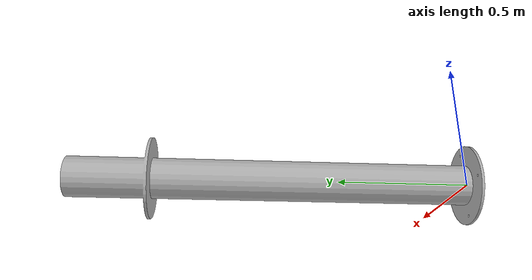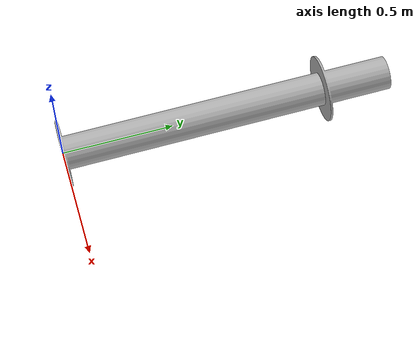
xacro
<?xml version="1.0" ?>
<robot name="Pole" xmlns:xacro="http://www.ros.org/wiki/xacro">

<xacro:include filename="$(find Pole_description)/urdf/materials.xacro" />
<xacro:include filename="$(find Pole_description)/urdf/Pole.trans" />
<xacro:include filename="$(find Pole_description)/urdf/Pole.gazebo" />
<link name="base_link">
  <inertial>
    <origin xyz="-8.521453182833983e-16 0.7075689881734561 -3.652051364071707e-16" rpy="0 0 0"/>
    <mass value="37.534806547294835"/>
    <inertia ixx="9.123243" iyy="0.263749" izz="9.123243" ixy="-0.0" iyz="-0.0" ixz="-0.0"/>
  </inertial>
  <visual>
    <origin xyz="0 0 0" rpy="0 0 0"/>
    <geometry>
      <mesh filename="package://Pole_description/meshes/base_link.stl" scale="0.001 0.001 0.001"/>
    </geometry>
    <material name="silver"/>
  </visual>
  <collision>
    <origin xyz="0 0 0" rpy="0 0 0"/>
    <geometry>
      <mesh filename="package://Pole_description/meshes/base_link.stl" scale="0.001 0.001 0.001"/>
    </geometry>
  </collision>
</link>

</robot>

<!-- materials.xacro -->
<robot name="Pole" xmlns:xacro="http://www.ros.org/wiki/xacro" >

<material name="silver">
  <color rgba="0.700 0.700 0.700 1.000"/>
</material>

</robot>

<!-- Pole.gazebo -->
<robot name="Pole" xmlns:xacro="http://www.ros.org/wiki/xacro" >

<xacro:property name="body_color" value="Gazebo/Silver" />

<gazebo>
  <plugin name="control" filename="libgazebo_ros_control.so"/>
</gazebo>
<gazebo reference="base_link">
  <material>${body_color}</material>
  <mu1>0.2</mu1>
  <mu2>0.2</mu2>
  <selfCollide>true</selfCollide>
  <gravity>true</gravity>
</gazebo>

</robot>
